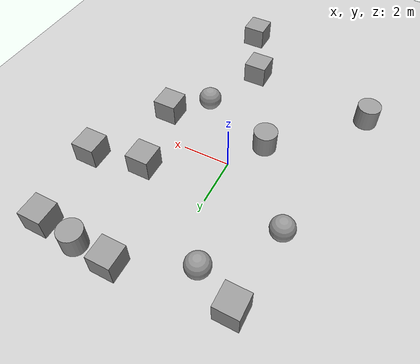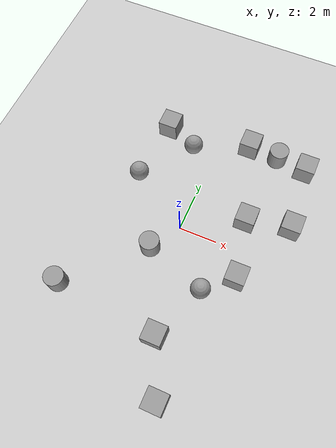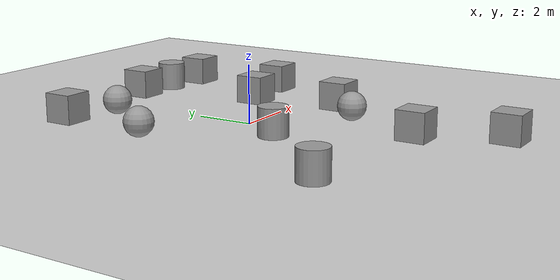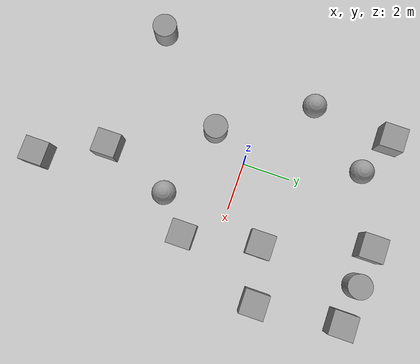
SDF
<sdf version="1.6">
 <world name="default">
  <light name="sun" type="directional">
   <pose>0 0 10 0 -0 0</pose>
   <diffuse>0.8 0.8 0.8 1</diffuse>
   <specular>0.1 0.1 0.1 1</specular>
   <attenuation>
    <range>1000</range>
    <constant>0.9</constant>
    <linear>0.01</linear>
    <quadratic>0.001</quadratic>
   </attenuation>
   <direction>-0.5 0.5 -1</direction>
  </light>
  <model name="ground_plane">
   <static>1</static>
   <link name="link">
    <collision name="collision">
     <geometry><plane><normal>0 0 1</normal><size>100 100</size></plane></geometry>
     <surface><friction><ode><mu>100</mu><mu2>50</mu2></ode></friction></surface>
    </collision>
    <visual name="visual">
     <cast_shadows>0</cast_shadows>
     <geometry><plane><normal>0 0 1</normal><size>100 100</size></plane></geometry>
     <material>
      <script><uri>file://media/materials/scripts/gazebo.material</uri><name>Gazebo/Grey</name></script>
     </material>
    </visual>
   </link>
  </model>
  <gravity>0 0 -9.8</gravity>
  <magnetic_field>6e-06 2.3e-05 -4.2e-05</magnetic_field>
  <atmosphere type="adiabatic"/>
  <physics name="default_physics" default="0" type="ode">
   <max_step_size>0.001</max_step_size>
   <real_time_factor>1</real_time_factor>
   <real_time_update_rate>1000</real_time_update_rate>
  </physics>
  <scene><ambient>0.4 0.4 0.4 1</ambient><background>0.7 0.7 0.7 1</background><shadows>1</shadows></scene>
  <spherical_coordinates>
   <surface_model>EARTH_WGS84</surface_model>
   <latitude_deg>0</latitude_deg>
   <longitude_deg>0</longitude_deg>
   <elevation>0</elevation>
   <heading_deg>0</heading_deg>
  </spherical_coordinates>
  <model name="unit_cylinder_0">
   <pose>-0.959955 -1.54892 0.499994 -4e-06 -3e-06 -0</pose>
   <link name="link">
    <inertial>
     <mass>1</mass>
     <inertia><ixx>0.145833</ixx><ixy>0</ixy><ixz>0</ixz><iyy>0.145833</iyy><iyz>0</iyz><izz>0.125</izz></inertia>
    </inertial>
    <collision name="collision">
     <geometry><cylinder><radius>0.5</radius><length>1</length></cylinder></geometry>
    </collision>
    <visual name="visual">
     <geometry><cylinder><radius>0.5</radius><length>1</length></cylinder></geometry>
     <material>
      <script><name>Gazebo/Grey</name><uri>file://media/materials/scripts/gazebo.material</uri></script>
     </material>
    </visual>
   </link>
  </model>
  <model name="unit_sphere_0">
   <pose>2.22279 -2.68209 0.5 0 -0 0</pose>
   <link name="link">
    <inertial>
     <mass>1</mass>
     <inertia><ixx>0.1</ixx><ixy>0</ixy><ixz>0</ixz><iyy>0.1</iyy><iyz>0</iyz><izz>0.1</izz></inertia>
    </inertial>
    <collision name="collision"><geometry><sphere><radius>0.5</radius></sphere></geometry></collision>
    <visual name="visual">
     <geometry><sphere><radius>0.5</radius></sphere></geometry>
     <material>
      <script><name>Gazebo/Grey</name><uri>file://media/materials/scripts/gazebo.material</uri></script>
     </material>
    </visual>
   </link>
  </model>
  <model name="unit_box_0">
   <pose>3.57393 -1.43512 0.499995 0 1e-05 0</pose>
   <link name="link">
    <inertial>
     <mass>1</mass>
     <inertia>
      <ixx>0.166667</ixx>
      <ixy>0</ixy>
      <ixz>0</ixz>
      <iyy>0.166667</iyy>
      <iyz>0</iyz>
      <izz>0.166667</izz>
     </inertia>
    </inertial>
    <collision name="collision"><geometry><box><size>1 1 1</size></box></geometry></collision>
    <visual name="visual">
     <geometry><box><size>1 1 1</size></box></geometry>
     <material>
      <script><name>Gazebo/Grey</name><uri>file://media/materials/scripts/gazebo.material</uri></script>
     </material>
    </visual>
   </link>
  </model>
  <model name="unit_box_1">
   <pose>1.11053 -5.51468 0.5 0 -0 0</pose>
   <link name="link">
    <inertial>
     <mass>1</mass>
     <inertia>
      <ixx>0.166667</ixx>
      <ixy>0</ixy>
      <ixz>0</ixz>
      <iyy>0.166667</iyy>
      <iyz>0</iyz>
      <izz>0.166667</izz>
     </inertia>
    </inertial>
    <collision name="collision"><geometry><box><size>1 1 1</size></box></geometry></collision>
    <visual name="visual">
     <geometry><box><size>1 1 1</size></box></geometry>
     <material>
      <script><name>Gazebo/Grey</name><uri>file://media/materials/scripts/gazebo.material</uri></script>
     </material>
    </visual>
   </link>
  </model>
  <model name="unit_box_2">
   <pose>5.20934 2.12928 0.499995 0 1e-05 0</pose>
   <link name="link">
    <inertial>
     <mass>1</mass>
     <inertia>
      <ixx>0.166667</ixx>
      <ixy>0</ixy>
      <ixz>0</ixz>
      <iyy>0.166667</iyy>
      <iyz>0</iyz>
      <izz>0.166667</izz>
     </inertia>
    </inertial>
    <collision name="collision"><geometry><box><size>1 1 1</size></box></geometry></collision>
    <visual name="visual">
     <geometry><box><size>1 1 1</size></box></geometry>
     <material>
      <script><name>Gazebo/Grey</name><uri>file://media/materials/scripts/gazebo.material</uri></script>
     </material>
    </visual>
   </link>
  </model>
  <model name="unit_sphere_1">
   <pose>-3.2211 2.04107 0.5 0 -0 0</pose>
   <link name="link">
    <inertial>
     <mass>1</mass>
     <inertia><ixx>0.1</ixx><ixy>0</ixy><ixz>0</ixz><iyy>0.1</iyy><iyz>0</iyz><izz>0.1</izz></inertia>
    </inertial>
    <collision name="collision"><geometry><sphere><radius>0.5</radius></sphere></geometry></collision>
    <visual name="visual">
     <geometry><sphere><radius>0.5</radius></sphere></geometry>
     <material>
      <script><name>Gazebo/Grey</name><uri>file://media/materials/scripts/gazebo.material</uri></script>
     </material>
    </visual>
   </link>
  </model>
  <model name="unit_cylinder_1">
   <pose>-4.35068 -4.95528 0.499994 -4e-06 -4e-06 -0</pose>
   <link name="link">
    <inertial>
     <mass>1</mass>
     <inertia><ixx>0.145833</ixx><ixy>0</ixy><ixz>0</ixz><iyy>0.145833</iyy><iyz>0</iyz><izz>0.125</izz></inertia>
    </inertial>
    <collision name="collision">
     <geometry><cylinder><radius>0.5</radius><length>1</length></cylinder></geometry>
    </collision>
    <visual name="visual">
     <geometry><cylinder><radius>0.5</radius><length>1</length></cylinder></geometry>
     <material>
      <script><name>Gazebo/Grey</name><uri>file://media/materials/scripts/gazebo.material</uri></script>
     </material>
    </visual>
   </link>
  </model>
  <model name="unit_box_3">
   <pose>1.65749 5.87983 0.499995 -1e-05 0 0</pose>
   <link name="link">
    <inertial>
     <mass>1</mass>
     <inertia>
      <ixx>0.166667</ixx>
      <ixy>0</ixy>
      <ixz>0</ixz>
      <iyy>0.166667</iyy>
      <iyz>0</iyz>
      <izz>0.166667</izz>
     </inertia>
    </inertial>
    <collision name="collision"><geometry><box><size>1 1 1</size></box></geometry></collision>
    <visual name="visual">
     <geometry><box><size>1 1 1</size></box></geometry>
     <material>
      <script><name>Gazebo/Grey</name><uri>file://media/materials/scripts/gazebo.material</uri></script>
     </material>
    </visual>
   </link>
  </model>
  <model name="unit_box_4">
   <pose>4.85255 5.6018 0.499995 0 1e-05 0</pose>
   <link name="link">
    <inertial>
     <mass>1</mass>
     <inertia>
      <ixx>0.166667</ixx>
      <ixy>0</ixy>
      <ixz>0</ixz>
      <iyy>0.166667</iyy>
      <iyz>0</iyz>
      <izz>0.166667</izz>
     </inertia>
    </inertial>
    <collision name="collision"><geometry><box><size>1 1 1</size></box></geometry></collision>
    <visual name="visual">
     <geometry><box><size>1 1 1</size></box></geometry>
     <material>
      <script><name>Gazebo/Grey</name><uri>file://media/materials/scripts/gazebo.material</uri></script>
     </material>
    </visual>
   </link>
  </model>
  <model name="unit_box_5">
   <pose>-2.85683 5.41519 0.499995 -1e-05 0 0</pose>
   <link name="link">
    <inertial>
     <mass>1</mass>
     <inertia>
      <ixx>0.166667</ixx>
      <ixy>0</ixy>
      <ixz>0</ixz>
      <iyy>0.166667</iyy>
      <iyz>0</iyz>
      <izz>0.166667</izz>
     </inertia>
    </inertial>
    <collision name="collision"><geometry><box><size>1 1 1</size></box></geometry></collision>
    <visual name="visual">
     <geometry><box><size>1 1 1</size></box></geometry>
     <material>
      <script><name>Gazebo/Grey</name><uri>file://media/materials/scripts/gazebo.material</uri></script>
     </material>
    </visual>
   </link>
  </model>
  <model name="unit_box_6_0">
   <pose>2.35131 -8.14942 0.5 0 0 -0.005557</pose>
   <link name="link">
    <inertial>
     <mass>1</mass>
     <inertia>
      <ixx>0.166667</ixx>
      <ixy>0</ixy>
      <ixz>0</ixz>
      <iyy>0.166667</iyy>
      <iyz>0</iyz>
      <izz>0.166667</izz>
     </inertia>
    </inertial>
    <collision name="collision"><geometry><box><size>0.999995 1 1</size></box></geometry></collision>
    <visual name="visual">
     <geometry><box><size>0.999995 1 1</size></box></geometry>
     <material>
      <script><name>Gazebo/Grey</name><uri>file://media/materials/scripts/gazebo.material</uri></script>
     </material>
    </visual>
   </link>
  </model>
  <model name="unit_cylinder_2">
   <pose>3.25301 5.78725 0.499997 3e-06 4e-06 -0</pose>
   <link name="link">
    <inertial>
     <mass>1</mass>
     <inertia><ixx>0.145833</ixx><ixy>0</ixy><ixz>0</ixz><iyy>0.145833</iyy><iyz>0</iyz><izz>0.125</izz></inertia>
    </inertial>
    <collision name="collision">
     <geometry><cylinder><radius>0.5</radius><length>1</length></cylinder></geometry>
    </collision>
    <visual name="visual">
     <geometry><cylinder><radius>0.5</radius><length>1</length></cylinder></geometry>
     <material>
      <script><name>Gazebo/Grey</name><uri>file://media/materials/scripts/gazebo.material</uri></script>
     </material>
    </visual>
   </link>
  </model>
  <model name="unit_sphere_2">
   <pose>-1.1986 4.67879 0.5 0 -0 0</pose>
   <link name="link">
    <inertial>
     <mass>1</mass>
     <inertia><ixx>0.1</ixx><ixy>0</ixy><ixz>0</ixz><iyy>0.1</iyy><iyz>0</iyz><izz>0.1</izz></inertia>
    </inertial>
    <collision name="collision"><geometry><sphere><radius>0.5</radius></sphere></geometry></collision>
    <visual name="visual">
     <geometry><sphere><radius>0.5</radius></sphere></geometry>
     <material>
      <script><name>Gazebo/Grey</name><uri>file://media/materials/scripts/gazebo.material</uri></script>
     </material>
    </visual>
   </link>
  </model>
  <model name="unit_box_6_1">
   <pose>2.95583 1.65664 0.5 0 -0 0</pose>
   <link name="link">
    <inertial>
     <mass>1</mass>
     <inertia>
      <ixx>0.166667</ixx>
      <ixy>0</ixy>
      <ixz>0</ixz>
      <iyy>0.166667</iyy>
      <iyz>0</iyz>
      <izz>0.166667</izz>
     </inertia>
    </inertial>
    <collision name="collision"><geometry><box><size>1 1 1</size></box></geometry></collision>
    <visual name="visual">
     <geometry><box><size>1 1 1</size></box></geometry>
     <material>
      <script><name>Gazebo/Grey</name><uri>file://media/materials/scripts/gazebo.material</uri></script>
     </material>
    </visual>
   </link>
  </model>
 </world>
</sdf>
